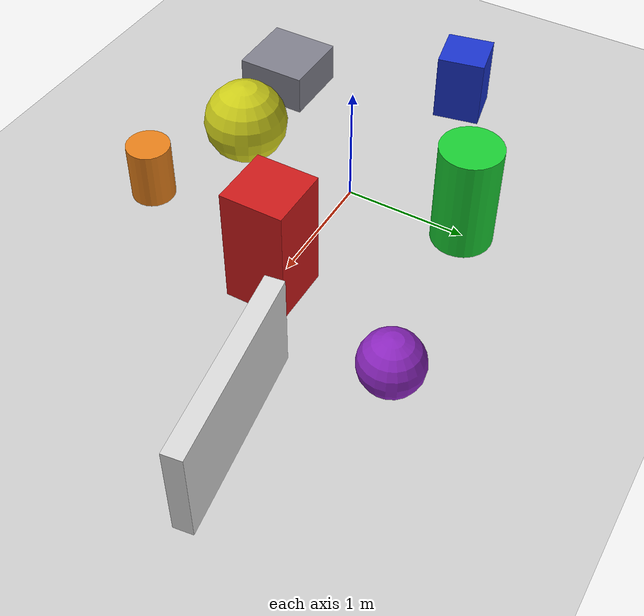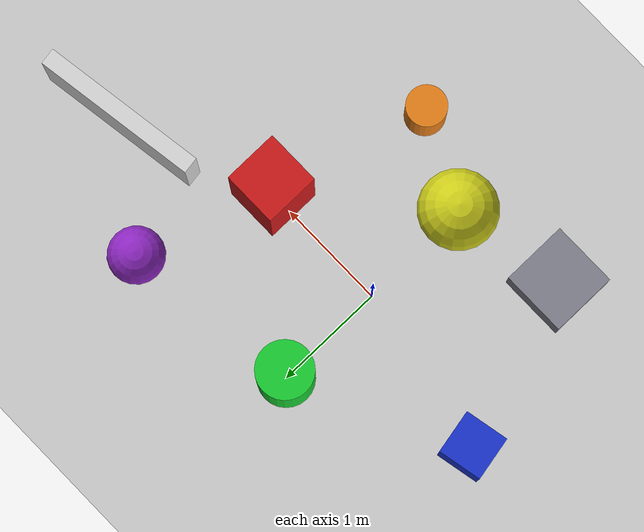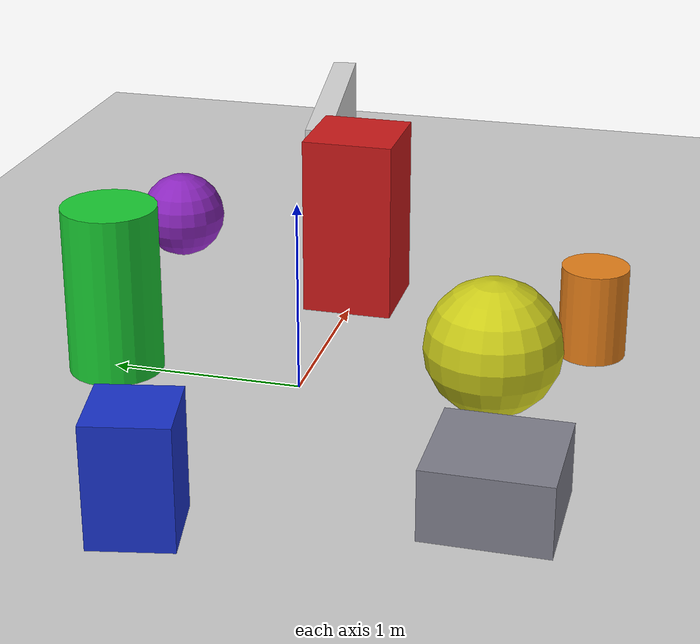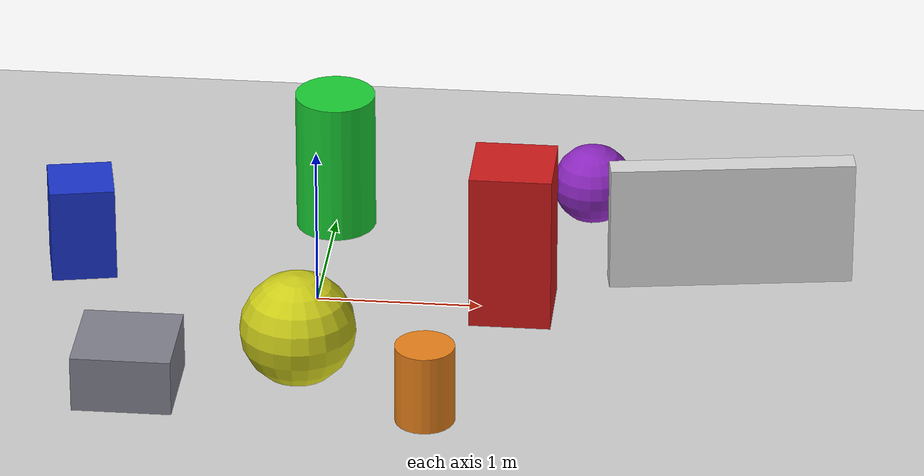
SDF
<?xml version="1.0" ?>
<sdf version="1.6">
  <world name="sensors_test">
    <include>
      <uri>model://ground_plane</uri>
    </include>
    <include>
      <uri>model://sun</uri>
    </include>

    <!-- Red box, front -->
    <model name="box_red">
      <pose>1.2 0 0.5 0 0 0</pose>
      <static>true</static>
      <link name="link">
        <collision name="collision">
          <geometry><box><size>0.5 0.5 1.0</size></box></geometry>
        </collision>
        <visual name="visual">
          <geometry><box><size>0.5 0.5 1.0</size></box></geometry>
          <material><ambient>0.8 0.1 0.1 1</ambient><diffuse>0.8 0.1 0.1 1</diffuse></material>
        </visual>
      </link>
    </model>

    <!-- Blue box, left-front -->
    <model name="box_blue">
      <pose>-1.5 0.3 0.3 0 0 0.2</pose>
      <static>true</static>
      <link name="link">
        <collision name="collision">
          <geometry><box><size>0.4 0.4 0.6</size></box></geometry>
        </collision>
        <visual name="visual">
          <geometry><box><size>0.4 0.4 0.6</size></box></geometry>
          <material><ambient>0.1 0.2 0.8 1</ambient><diffuse>0.1 0.2 0.8 1</diffuse></material>
        </visual>
      </link>
    </model>

    <!-- Green cylinder, right -->
    <model name="cyl_green">
      <pose>0 1.0 0.45 0 0 0</pose>
      <static>true</static>
      <link name="link">
        <collision name="collision">
          <geometry><cylinder><radius>0.25</radius><length>0.9</length></cylinder></geometry>
        </collision>
        <visual name="visual">
          <geometry><cylinder><radius>0.25</radius><length>0.9</length></cylinder></geometry>
          <material><ambient>0.1 0.8 0.2 1</ambient><diffuse>0.1 0.8 0.2 1</diffuse></material>
        </visual>
      </link>
    </model>

    <!-- Yellow sphere, left -->
    <model name="sphere_yellow">
      <pose>0 -1.0 0.35 0 0 0</pose>
      <static>true</static>
      <link name="link">
        <collision name="collision">
          <geometry><sphere><radius>0.35</radius></sphere></geometry>
        </collision>
        <visual name="visual">
          <geometry><sphere><radius>0.35</radius></sphere></geometry>
          <material><ambient>0.8 0.8 0.1 1</ambient><diffuse>0.8 0.8 0.1 1</diffuse></material>
        </visual>
      </link>
    </model>

    <!-- White wall, far front-right -->
    <model name="wall_white">
      <pose>2.5 0.5 0.4 0 0 0.15</pose>
      <static>true</static>
      <link name="link">
        <collision name="collision">
          <geometry><box><size>1.5 0.15 0.8</size></box></geometry>
        </collision>
        <visual name="visual">
          <geometry><box><size>1.5 0.15 0.8</size></box></geometry>
          <material><ambient>0.85 0.85 0.85 1</ambient><diffuse>0.85 0.85 0.85 1</diffuse></material>
        </visual>
      </link>
    </model>

    <!-- Orange small cylinder, back-left -->
    <model name="cyl_orange">
      <pose>0.8 -1.4 0.25 0 0 0</pose>
      <static>true</static>
      <link name="link">
        <collision name="collision">
          <geometry><cylinder><radius>0.18</radius><length>0.5</length></cylinder></geometry>
        </collision>
        <visual name="visual">
          <geometry><cylinder><radius>0.18</radius><length>0.5</length></cylinder></geometry>
          <material><ambient>0.9 0.5 0.1 1</ambient><diffuse>0.9 0.5 0.1 1</diffuse></material>
        </visual>
      </link>
    </model>

    <!-- Gray low box, back -->
    <model name="box_gray">
      <pose>-1.0 -1.2 0.175 0 0 0</pose>
      <static>true</static>
      <link name="link">
        <collision name="collision">
          <geometry><box><size>0.6 0.6 0.35</size></box></geometry>
        </collision>
        <visual name="visual">
          <geometry><box><size>0.6 0.6 0.35</size></box></geometry>
          <material><ambient>0.5 0.5 0.55 1</ambient><diffuse>0.5 0.5 0.55 1</diffuse></material>
        </visual>
      </link>
    </model>

    <!-- Purple sphere, front-right -->
    <model name="sphere_purple">
      <pose>1.6 1.2 0.25 0 0 0</pose>
      <static>true</static>
      <link name="link">
        <collision name="collision">
          <geometry><sphere><radius>0.25</radius></sphere></geometry>
        </collision>
        <visual name="visual">
          <geometry><sphere><radius>0.25</radius></sphere></geometry>
          <material><ambient>0.55 0.15 0.75 1</ambient><diffuse>0.55 0.15 0.75 1</diffuse></material>
        </visual>
      </link>
    </model>

  </world>
</sdf>
